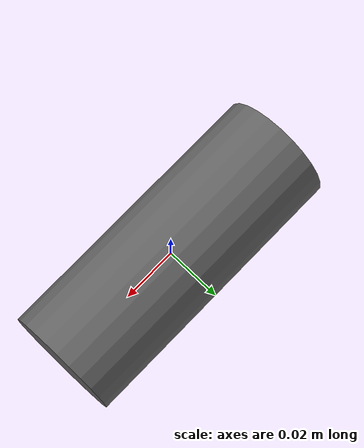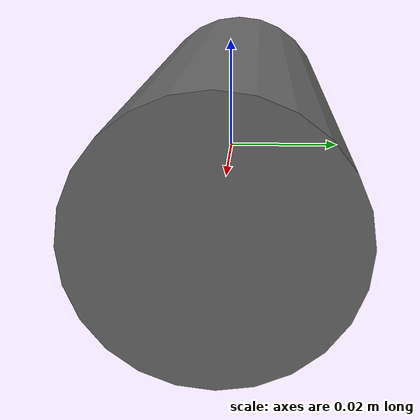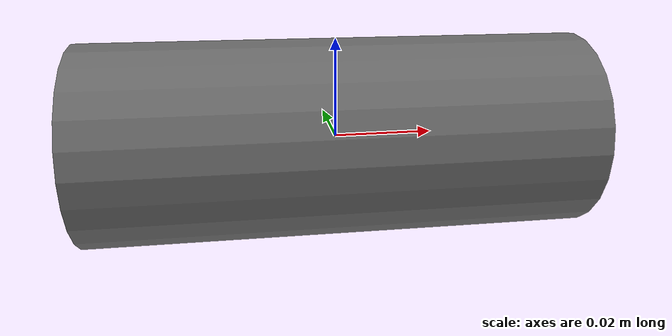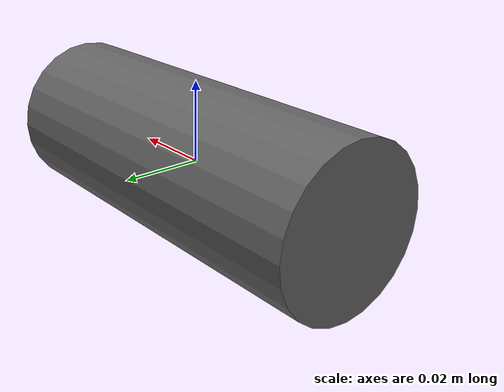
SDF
<?xml version="1.0" ?>
<sdf version="1.6">
  <model name="laser_pointer">
    <!-- Make the model static (it won't fall or move under gravity) -->
    <static>true</static>
    <!-- Pointer base link (e.g., handle of the laser pointer) -->
    <link name="pointer_base">
      <pose>0 0 0 0 1.5708 0</pose>  <!-- oriented along X axis -->
      <visual name="pointer_body_visual">
        <geometry>
          <!-- Small cylinder as pointer body, 0.1m length, 0.04m diameter -->
          <cylinder>
            <radius>0.02</radius>
            <length>0.1</length>
          </cylinder>
        </geometry>
        <material>
          <ambient>0.3 0.3 0.3 1</ambient>
          <diffuse>0.4 0.4 0.4 1</diffuse>
          <specular>0.1 0.1 0.1 1</specular>
        </material>
      </visual>
      <!-- Inertial (not critical since static, but provided for completeness) -->
      <inertial>
        <mass>0.1</mass>
        <inertia>
          <ixx>0.00002</ixx> <iyy>0.000093</iyy> <izz>0.000093</izz>
          <ixy>0.0</ixy> <ixz>0.0</ixz> <iyz>0.0</iyz>
        </inertia>
      </inertial>
    </link>
    <!-- Laser beam link (initially invisible thin cylinder) -->
    <link name="laser_beam">
      <!-- Position the beam in front of the base; rotate it to point along X axis -->
      <pose>0.55 0 0 0 1.5708 0</pose>  <!-- 0.55m in front of base, horizontal -->
      <visual name="beam_visual">
        <geometry>
          <!-- Thin cylinder ~1m length to represent laser beam -->
          <cylinder>
            <radius>0.005</radius>
            <length>1.0</length>
          </cylinder>
        </geometry>
        <material>
          <!-- Bright red color for the laser -->
          <ambient>1 0 0 1</ambient>
          <diffuse>1 0 0 1</diffuse>
          <specular>0.1 0.1 0.1 1</specular>
          <emissive>1 0 0 1</emissive>
        </material>
        <!-- Start with laser invisible -->
        <transparency>1.0</transparency>
      </visual>
      <inertial>
        <mass>0.01</mass>
        <inertia>
          <ixx>1.25e-07</ixx> <iyy>8.33e-04</iyy> <izz>8.33e-04</izz>
          <ixy>0.0</ixy> <ixz>0.0</ixz> <iyz>0.0</iyz>
        </inertia>
      </inertial>
    </link>
    <!-- Fixed joint attaching laser_beam to pointer_base so they move together -->
    <joint name="fixed_joint" type="fixed">
      <parent>pointer_base</parent>
      <child>laser_beam</child>
    </joint>

    <!-- Include the laser pointer plugin -->
    <plugin name="laser_pointer_controller" filename="liblaser_pointer_plugin.so">
      <!-- Tell the plugin which link to treat as the laser beam -->
      <laser_link_name>laser_beam</laser_link_name>
    </plugin>
  </model>
</sdf>
